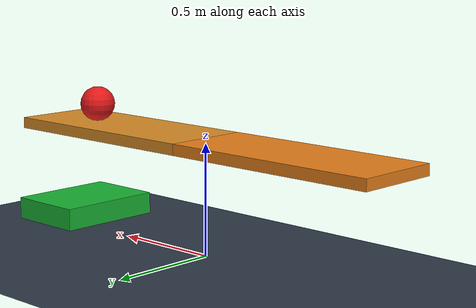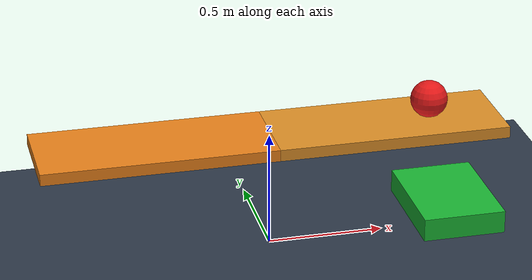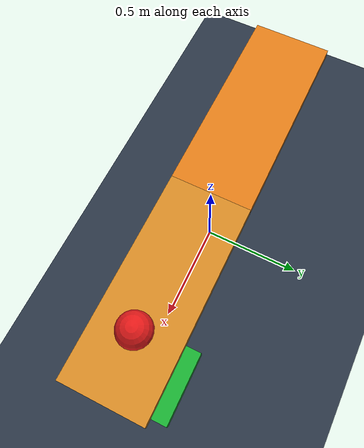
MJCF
<mujoco model="cargo_bridge">
  <compiler angle="radian"/>
  <option timestep="0.001" integrator="Euler" iterations="1000" tolerance="1e-6" gravity="0 0 -9.81">
    <flag contact="enable" equality="enable" limit="disable" frictionloss="disable"/>
  </option>
  <asset>
    <texture name="floor_grid" type="2d" builtin="checker" rgb1="0.12 0.15 0.20" rgb2="0.22 0.28 0.35" width="512" height="512"/>
    <material name="floor_material" texture="floor_grid" texrepeat="8 8" reflectance="0.1"/>
  </asset>
  <worldbody>
    <light directional="true" pos="0 -2 5" dir="0 0.3 -1" diffuse="0.9 0.9 0.9" specular="0.3 0.3 0.3"/>

    <geom material="floor_material" name="floor" type="plane" size="5 5 0.1" pos="0 0 0" condim="3"/>
    <body name="frame" pos="0 0 0">
      <geom name="tray" type="box" size="0.18 0.25 0.05" pos="0.8 0 0.1" rgba="0.1 0.7 0.2 1" mass="0" contype="1" conaffinity="0"/>
    </body>
    <body name="deckA" pos="-0.5 0 0.5">
      <joint name="deckA_hinge" type="hinge" pos="-1.0 0 0.5" axis="0 1 0"/>
      <geom name="deckA_geom" type="box" size="0.5 0.2 0.025" rgba="0.9 0.5 0.1 1" mass="2" friction="0.25 0.05 0.02" contype="1" conaffinity="0" condim="3"/>
    </body>
    <body name="deckB" pos="0.5 0 0.5">
      <freejoint name="deckB_free"/>
      <geom name="deckB_geom" type="box" size="0.5 0.2 0.025" rgba="0.85 0.55 0.15 1" mass="8" friction="0.25 0.05 0.02" contype="1" conaffinity="0" condim="3"/>
    </body>
    <body name="payload" pos="0.7 0 0.6">
      <freejoint name="payload_free"/>
      <geom name="payload_geom" type="sphere" size="0.08" rgba="0.9 0.1 0.1 1" mass="0.5" friction="0.25 0.05 0.02" contype="1" conaffinity="1" condim="3"/>
    </body>
  </worldbody>
  <contact>
    <pair geom1="deckB_geom" geom2="tray" condim="1" solref="0.002 1" solimp="0.99 0.999 0.001"/>
    <pair geom1="payload_geom" geom2="deckA_geom"/>
    <pair geom1="payload_geom" geom2="deckB_geom"/>
    <pair geom1="payload_geom" geom2="tray"/>
  </contact>
  <equality>
    <connect name="deck_link" body1="deckA" body2="deckB" anchor="0.5 0 0"/>
    <weld name="brace_latch" body1="deckB"/>
  </equality>
</mujoco>
